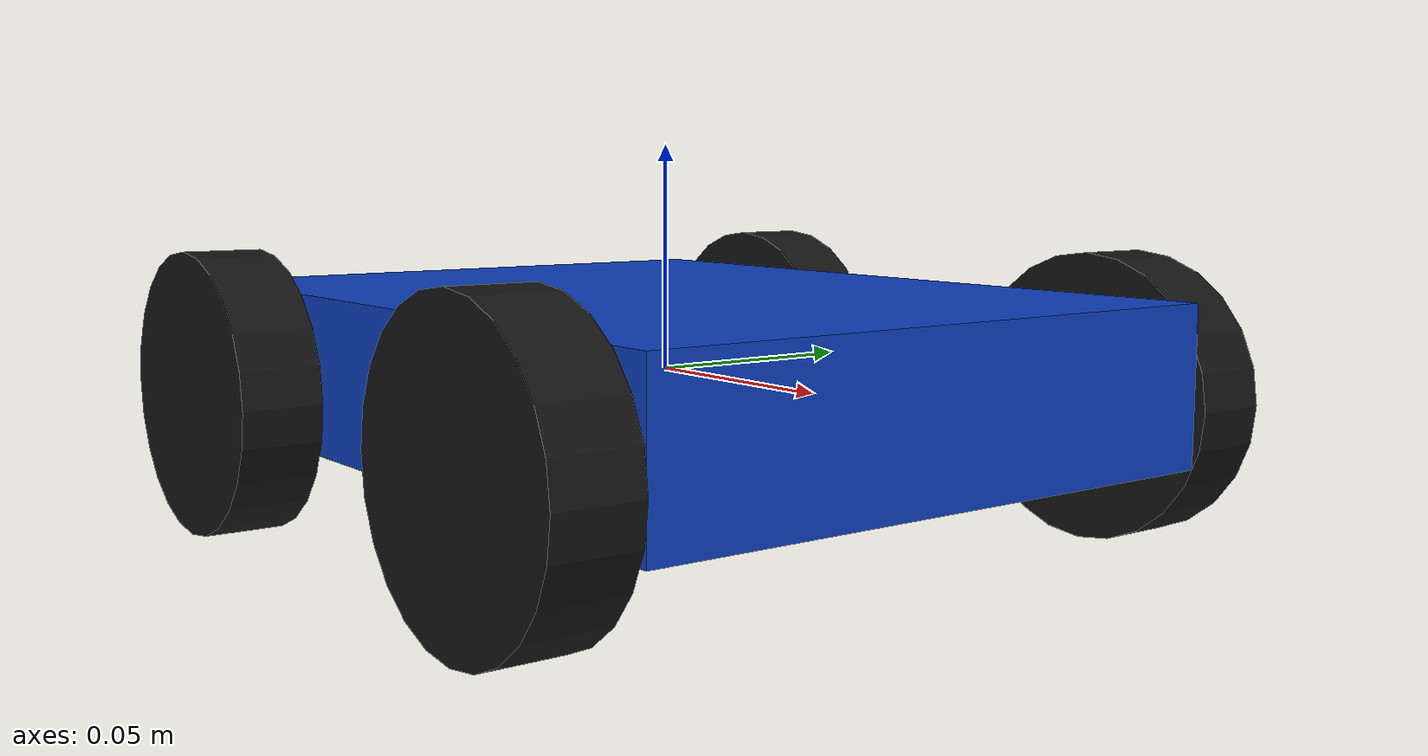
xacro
<?xml version="1.0"?>
<robot xmlns:xacro="http://www.ros.org/wiki/xacro"
       name="gesture_robot">

    <!-- 1. ROBOT DIMENSIONS (METRES)           -->

    <xacro:property name="chassis_length" value="0.18"/>
    <xacro:property name="chassis_width" value="0.14"/>
    <xacro:property name="chassis_height" value="0.035"/>

    <xacro:property name="wheel_radius" value="0.032"/>
    <xacro:property name="wheel_width" value="0.018"/>

    <!-- Wheel mounting positions -->
    <xacro:property name="wheel_x" value="0.060"/>
    <xacro:property name="wheel_y" value="0.080"/>
    <xacro:property name="wheel_z" value="-0.0055"/>

    <!-- 2. MAIN ROBOT CHASSIS                  -->

    <link name="base_link">

        <visual>
            <geometry>
                <box size="${chassis_length} ${chassis_width} ${chassis_height}"/>
            </geometry>

            <material name="blue">
                <color rgba="0.05 0.25 0.75 1.0"/>
            </material>
        </visual>

        <collision>
            <geometry>
                <box size="${chassis_length} ${chassis_width} ${chassis_height}"/>
            </geometry>
        </collision>

        <inertial>
            <mass value="1.0"/>

            <inertia
            ixx="0.001735"
            ixy="0"
            ixz="0"
            iyy="0.002802"
            iyz="0"
            izz="0.004333"/>
        </inertial>

    </link>

    <!-- 3. WHEEL CREATION MACRO                -->

    <xacro:macro name="wheel" params="name x y">

        <link name="${name}">

            <visual>
                <origin xyz="0 0 0" rpy="1.5707963 0 0"/>

                <geometry>
                    <cylinder radius="${wheel_radius}"
                              length="${wheel_width}"/>
                </geometry>

                <material name="black">
                    <color rgba="0.08 0.08 0.08 1.0"/>
                </material>
            </visual>

            <collision>
                <origin xyz="0 0 0" rpy="1.5707963 0 0"/>

                <geometry>
                    <cylinder radius="${wheel_radius}"
                              length="${wheel_width}"/>
                </geometry>
            </collision>

            <inertial>
                <mass value="0.08"/>

                <inertia
                    ixx="0.00002264"
                    ixy="0"
                    ixz="0"
                    iyy="0.00004096"
                    iyz="0"
                    izz="0.00002264"/>
            </inertial>

        </link>

        <!-- Continuous joint allows unlimited wheel rotation -->

        <joint name="${name}_joint" type="continuous">

            <parent link="base_link"/>
            <child link="${name}"/>

            <origin xyz="${x} ${y} ${wheel_z}"
                    rpy="0 0 0"/>

            <axis xyz="0 1 0"/>

        </joint>

    </xacro:macro>

    <!-- 4. CREATE FOUR ROBOT WHEELS            -->

    <xacro:wheel name="front_left_wheel"
                 x="${wheel_x}" y="${wheel_y}"/>

    <xacro:wheel name="front_right_wheel"
                 x="${wheel_x}" y="${-wheel_y}"/>

    <xacro:wheel name="rear_left_wheel"
                 x="${-wheel_x}" y="${wheel_y}"/>

    <xacro:wheel name="rear_right_wheel"
                 x="${-wheel_x}" y="${-wheel_y}"/>

</robot>
